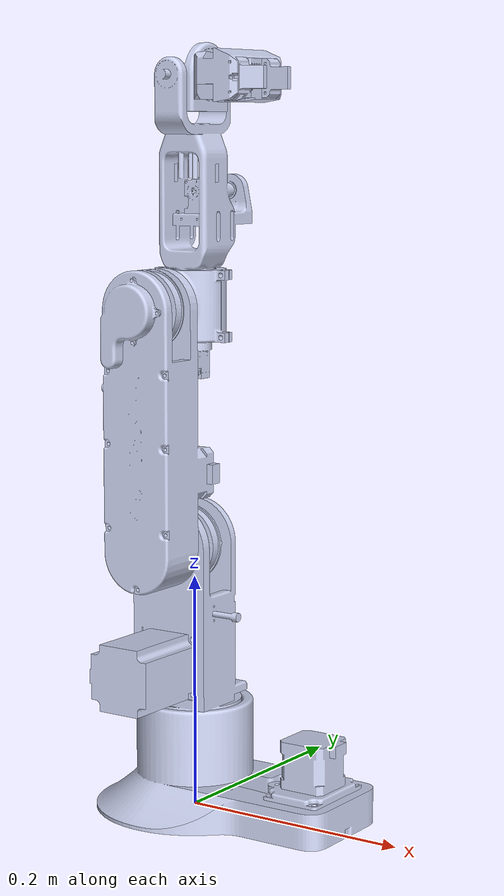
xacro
<?xml version="1.0"?>
<robot xmlns:xacro="http://www.ros.org/wiki/xacro" name="nick_bot">
    <xacro:arg name="initial_positions_file" default="initial_positions.yaml" />

    <!-- Import nick_bot urdf file -->
    <xacro:include filename="$(find nick_bot)/urdf/nick_bot.urdf" />

    <!-- Import control_xacro -->
    <xacro:include filename="nick_bot.ros2_control.xacro" />

    <xacro:nick_bot_ros2_control name="FakeSystem" initial_positions_file="$(arg initial_positions_file)"/>

</robot>

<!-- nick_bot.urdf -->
<robot
  name="nick_bot">

  <link name="world"/>

  <joint name="base_joint" type="fixed">
    <parent link="world"/>
    <child link="base_link"/>
    <origin rpy="0 0 0" xyz="0.0 0.0 0.0"/>
  </joint>

  <link
    name="base_link">
    <inertial>
      <origin
        xyz="0.032405 -0.00051995 0.03193"
        rpy="0 0 0" />
      <mass
        value="1.1011" />
      <inertia
        ixx="0.001263"
        ixy="2.5167E-06"
        ixz="-4.9074E-05"
        iyy="0.0029432"
        iyz="1.9688E-06"
        izz="0.0039215" />
    </inertial>
    <visual>
      <origin
        xyz="0 0 0"
        rpy="0 0 0" />
      <geometry>
        <mesh
          filename="package://nick_bot/meshes/base_link.STL" />
      </geometry>
      <material
        name="">
        <color
          rgba="0.79216 0.81961 0.93333 1" />
      </material>
    </visual>
    <collision>
      <origin
        xyz="0 0 0"
        rpy="0 0 0" />
      <geometry>
        <mesh
          filename="package://nick_bot/meshes/base_link.STL" />
      </geometry>
    </collision>
  </link>
  <link
    name="link_1">
    <inertial>
      <origin
        xyz="0.00014233 0.11339 0.028392"
        rpy="0 0 0" />
      <mass
        value="0.6335" />
      <inertia
        ixx="0.00068202"
        ixy="-8.016E-07"
        ixz="4.9488E-07"
        iyy="0.00030667"
        iyz="-4.7343E-05"
        izz="0.00081798" />
    </inertial>
    <visual>
      <origin
        xyz="0 0 0"
        rpy="0 0 0" />
      <geometry>
        <mesh
          filename="package://nick_bot/meshes/link_1.STL" />
      </geometry>
      <material
        name="">
        <color
          rgba="0.79216 0.81961 0.93333 1" />
      </material>
    </visual>
    <collision>
      <origin
        xyz="0 0 0"
        rpy="0 0 0" />
      <geometry>
        <mesh
          filename="package://nick_bot/meshes/link_1.STL" />
      </geometry>
    </collision>
  </link>
  <joint
    name="joint_1"
    type="revolute">
    <origin
      xyz="0 0 0.0305"
      rpy="1.5708 0 0" />
    <parent
      link="base_link" />
    <child
      link="link_1" />
    <axis
      xyz="0 -1 0" />
    <limit
      lower="-3.5"
      upper="3.5"
      effort="0"
      velocity="0" />
  </joint>
  <link
    name="link_2">
    <inertial>
      <origin
        xyz="0.00022044 0.091028 0.053199"
        rpy="0 0 0" />
      <mass
        value="0.52734" />
      <inertia
        ixx="0.0016362"
        ixy="-1.1139E-06"
        ixz="5.8726E-07"
        iyy="0.00020546"
        iyz="3.2563E-05"
        izz="0.0017886" />
    </inertial>
    <visual>
      <origin
        xyz="0 0 0"
        rpy="0 0 0" />
      <geometry>
        <mesh
          filename="package://nick_bot/meshes/link_2.STL" />
      </geometry>
      <material
        name="">
        <color
          rgba="0.79216 0.81961 0.93333 1" />
      </material>
    </visual>
    <collision>
      <origin
        xyz="0 0 0"
        rpy="0 0 0" />
      <geometry>
        <mesh
          filename="package://nick_bot/meshes/link_2.STL" />
      </geometry>
    </collision>
  </link>
  <joint
    name="joint_2"
    type="revolute">
    <origin
      xyz="0 0.20125 0.0011675"
      rpy="0 0 0" />
    <parent
      link="link_1" />
    <child
      link="link_2" />
    <axis
      xyz="-0.0042062 0 0.99999" />
    <limit
      lower="-1.6"
      upper="1.6"
      effort="0"
      velocity="0" />
  </joint>
  <link
    name="link_3">
    <inertial>
      <origin
        xyz="5.0355E-05 -0.010892 0.010933"
        rpy="0 0 0" />
      <mass
        value="0.11306" />
      <inertia
        ixx="4.9032E-05"
        ixy="-6.8837E-09"
        ixz="3.2674E-08"
        iyy="3.6024E-05"
        iyz="-7.0703E-07"
        izz="5.732E-05" />
    </inertial>
    <visual>
      <origin
        xyz="0 0 0"
        rpy="0 0 0" />
      <geometry>
        <mesh
          filename="package://nick_bot/meshes/link_3.STL" />
      </geometry>
      <material
        name="">
        <color
          rgba="0.79216 0.81961 0.93333 1" />
      </material>
    </visual>
    <collision>
      <origin
        xyz="0 0 0"
        rpy="0 0 0" />
      <geometry>
        <mesh
          filename="package://nick_bot/meshes/link_3.STL" />
      </geometry>
    </collision>
  </link>
  <joint
    name="joint_3"
    type="revolute">
    <origin
      xyz="0 0.2 0"
      rpy="0 0 0" />
    <parent
      link="link_2" />
    <child
      link="link_3" />
    <axis
      xyz="0.0042062 0 0.99999" />
    <limit
      lower="-2"
      upper="2"
      effort="0"
      velocity="0" />
  </joint>
  <link
    name="link_4">
    <inertial>
      <origin
        xyz="-3.1646E-05 0.081245 -0.0074944"
        rpy="0 0 0" />
      <mass
        value="0.21005" />
      <inertia
        ixx="0.00036978"
        ixy="9.3158E-09"
        ixz="-5.2964E-08"
        iyy="7.2293E-05"
        iyz="2.4139E-06"
        izz="0.00035723" />
    </inertial>
    <visual>
      <origin
        xyz="0 0 0"
        rpy="0 0 0" />
      <geometry>
        <mesh
          filename="package://nick_bot/meshes/link_4.STL" />
      </geometry>
      <material
        name="">
        <color
          rgba="0.79216 0.81961 0.93333 1" />
      </material>
    </visual>
    <collision>
      <origin
        xyz="0 0 0"
        rpy="0 0 0" />
      <geometry>
        <mesh
          filename="package://nick_bot/meshes/link_4.STL" />
      </geometry>
    </collision>
  </link>
  <joint
    name="joint_4"
    type="revolute">
    <origin
      xyz="0 0 -0.0011675"
      rpy="0 0 0" />
    <parent
      link="link_3" />
    <child
      link="link_4" />
    <axis
      xyz="0 1 0" />
    <limit
      lower="-4"
      upper="4"
      effort="0"
      velocity="0" />
  </joint>
  <link
    name="link_5">
    <inertial>
      <origin
        xyz="0.0027735 -0.011173 -1.3036E-05"
        rpy="0 0 0" />
      <mass
        value="0.049088" />
      <inertia
        ixx="1.7829E-05"
        ixy="-1.0477E-06"
        ixz="-3.0628E-08"
        iyy="1.3411E-05"
        iyz="2.9316E-09"
        izz="1.0527E-05" />
    </inertial>
    <visual>
      <origin
        xyz="0 0 0"
        rpy="0 0 0" />
      <geometry>
        <mesh
          filename="package://nick_bot/meshes/link_5.STL" />
      </geometry>
      <material
        name="">
        <color
          rgba="0.79216 0.81961 0.93333 1" />
      </material>
    </visual>
    <collision>
      <origin
        xyz="0 0 0"
        rpy="0 0 0" />
      <geometry>
        <mesh
          filename="package://nick_bot/meshes/link_5.STL" />
      </geometry>
    </collision>
  </link>
  <joint
    name="joint_5"
    type="revolute">
    <origin
      xyz="0 0.18825 0"
      rpy="-7.0292E-05 0 -0.016712" />
    <parent
      link="link_4" />
    <child
      link="link_5" />
    <axis
      xyz="-0.0042056 0 -0.99999" />
    <limit
      lower="-3.50"
      upper="0.36"
      effort="0"
      velocity="0" />
  </joint>
  <link
    name="link_6">
    <inertial>
      <origin
        xyz="0.00056302 -0.0002805 0.029374"
        rpy="0 0 0" />
      <mass
        value="0.055212" />
      <inertia
        ixx="7.7928E-06"
        ixy="-1.6204E-07"
        ixz="-2.5483E-07"
        iyy="2.5129E-05"
        iyz="-4.2094E-07"
        izz="2.9561E-05" />
    </inertial>
    <visual>
      <origin
        xyz="0 0 0"
        rpy="0 0 0" />
      <geometry>
        <mesh
          filename="package://nick_bot/meshes/link_6.STL" />
      </geometry>
      <material
        name="">
        <color
          rgba="0.79216 0.81961 0.93333 1" />
      </material>
    </visual>
    <collision>
      <origin
        xyz="0 0 0"
        rpy="0 0 0" />
      <geometry>
        <mesh
          filename="package://nick_bot/meshes/link_6.STL" />
      </geometry>
    </collision>
  </link>
  <joint
    name="joint_6"
    type="revolute">
    <origin
      xyz="0.0099995 0.00016713 -4.2055E-05"
      rpy="3.1249 1.5666 3.1416" />
    <parent
      link="link_5" />
    <child
      link="link_6" />
    <axis
      xyz="0 0 -1" />
    <limit
      lower="-3.14159"
      upper="3.14159"
      effort="0"
      velocity="0" />
  </joint>
  <link
    name="EndEffector1">
    <inertial>
      <origin
        xyz="-0.020182 0.010425 0.010888"
        rpy="0 0 0" />
      <mass
        value="0.0066653" />
        <inertia ixx="0.0001" ixy="0.000"  ixz="0.000"
         iyy="0.0001" iyz="0.000"
         izz="0.0001"/>
    </inertial>
    <visual>
      <origin
        xyz="0 0 0"
        rpy="0 0 0" />
      <geometry>
        <mesh
          filename="package://nick_bot/meshes/EndEffector1.STL" />
      </geometry>
      <material
        name="">
        <color
          rgba="0.79216 0.81961 0.93333 1" />
      </material>
    </visual>
    <collision>
      <origin
        xyz="0 0 0"
        rpy="0 0 0" />
      <geometry>
        <mesh
          filename="package://nick_bot/meshes/EndEffector1.STL" />
      </geometry>
    </collision>
  </link>
  <joint
    name="joint_7"
    type="prismatic">
    <origin
      xyz="0 -0.015375 0.044556"
      rpy="0 0 0" />
    <parent
      link="link_6" />
    <child
      link="EndEffector1" />
    <axis
      xyz="1 0 0" />
    <limit
      lower="0"
      upper="0.02"
      effort="0"
      velocity="0" />
  </joint>
  <link
    name="EndEffector2">
    <inertial>
      <origin
        xyz="-0.02017 0.010554 0.010975"
        rpy="0 0 0" />
      <mass
        value="0.0066318" />
      <inertia ixx="0.0001" ixy="0.000"  ixz="0.000"
         iyy="0.0001" iyz="0.000"
         izz="0.0001"/>
    </inertial>
    <visual>
      <origin
        xyz="0 0 0"
        rpy="0 0 0" />
      <geometry>
        <mesh
          filename="package://nick_bot/meshes/EndEffector2.STL" />
      </geometry>
      <material
        name="">
        <color
          rgba="0.79216 0.81961 0.93333 1" />
      </material>
    </visual>
    <collision>
      <origin
        xyz="0 0 0"
        rpy="0 0 0" />
      <geometry>
        <mesh
          filename="package://nick_bot/meshes/EndEffector2.STL" />
      </geometry>
    </collision>
  </link>
  <joint
    name="joint_8"
    type="prismatic">
    <origin
      xyz="0 0.009575 0.044556"
      rpy="0 0 3.1416" />
    <parent
      link="link_6" />
    <child
      link="EndEffector2" />
    <axis
      xyz="1 0 0" />
    <limit
      lower="0"
      upper="0.02"
      effort="0"
      velocity="0" />
    <mimic joint="joint_7"/>
  </joint>

    <transmission name="link_1_trans">
    <type>transmission_interface/SimpleTransmission</type>
   <joint name="joint_1">
     <hardwareInterface>hardware_interface/VelocityJointInterface</hardwareInterface>
   </joint>
   <actuator name="link_1_motor">

   <hardwareInterface>hardware_interface/VelocityJointInterface</hardwareInterface>
       <mechanicalReduction>1</mechanicalReduction>
   </actuator>
   	</transmission>

     <transmission name="link_2_trans">
    <type>transmission_interface/SimpleTransmission</type>
   <joint name="joint_2">
     <hardwareInterface>hardware_interface/VelocityJointInterface</hardwareInterface>
   </joint>
   <actuator name="link_2_motor">

   <hardwareInterface>hardware_interface/VelocityJointInterface</hardwareInterface>
       <mechanicalReduction>1</mechanicalReduction>
   </actuator>
   	</transmission>

     <transmission name="link_3_trans">
    <type>transmission_interface/SimpleTransmission</type>
   <joint name="joint_3">
     <hardwareInterface>hardware_interface/VelocityJointInterface</hardwareInterface>
   </joint>
   <actuator name="link_3_motor">

   <hardwareInterface>hardware_interface/VelocityJointInterface</hardwareInterface>
       <mechanicalReduction>1</mechanicalReduction>
   </actuator>
	</transmission>

	<transmission name="link_4_trans">
    <type>transmission_interface/SimpleTransmission</type>
   <joint name="joint_4">
     <hardwareInterface>hardware_interface/PositionJointInterface</hardwareInterface>
   </joint>
   <actuator name="link_4_motor">

   <hardwareInterface>hardware_interface/PositionJointInterface</hardwareInterface>
       <mechanicalReduction>1</mechanicalReduction>
   </actuator>
	</transmission>

	<transmission name="link_5_trans">
    <type>transmission_interface/SimpleTransmission</type>
   <joint name="joint_5">
     <hardwareInterface>hardware_interface/PositionJointInterface</hardwareInterface>
   </joint>
   <actuator name="link_5_motor">

   <hardwareInterface>hardware_interface/PositionJointInterface</hardwareInterface>
       <mechanicalReduction>1</mechanicalReduction>
   </actuator>
	</transmission>

	<transmission name="link_6_trans">
    <type>transmission_interface/SimpleTransmission</type>
   <joint name="joint_6">
     <hardwareInterface>hardware_interface/PositionJointInterface</hardwareInterface>
   </joint>
   <actuator name="link_6_motor">

   <hardwareInterface>hardware_interface/PositionJointInterface</hardwareInterface>
       <mechanicalReduction>1</mechanicalReduction>
   </actuator>
	</transmission>

	<transmission name="link_7_trans">
    <type>transmission_interface/SimpleTransmission</type>
   <joint name="joint_7">
     <hardwareInterface>hardware_interface/PositionJointInterface</hardwareInterface>
   </joint>
   <actuator name="link_7_motor">

   <hardwareInterface>hardware_interface/PositionJointInterface</hardwareInterface>
       <mechanicalReduction>1</mechanicalReduction>
   </actuator>
	</transmission>

	<transmission name="link_8_trans">
    <type>transmission_interface/SimpleTransmission</type>
   <joint name="joint_8">
     <hardwareInterface>hardware_interface/PositionJointInterface</hardwareInterface>
   </joint>
   <actuator name="link_8_motor">

   <hardwareInterface>hardware_interface/PositionJointInterface</hardwareInterface>
       <mechanicalReduction>1</mechanicalReduction>
   </actuator>
	</transmission>
</robot>
